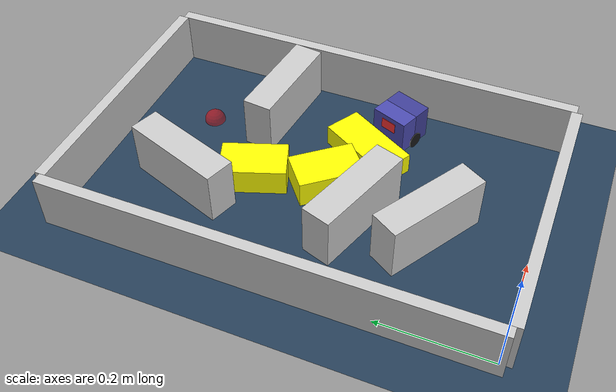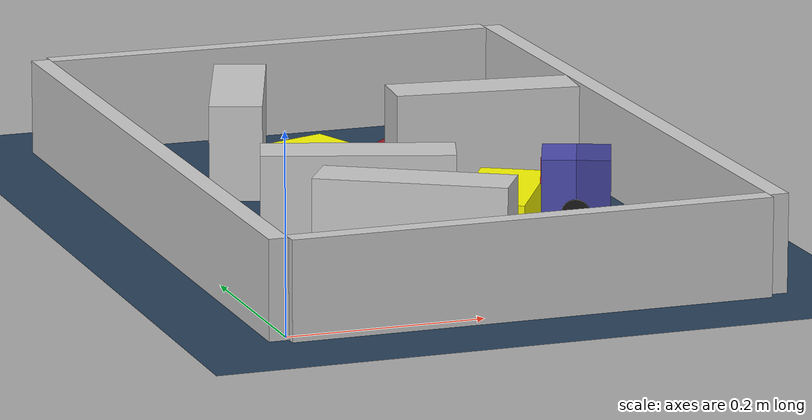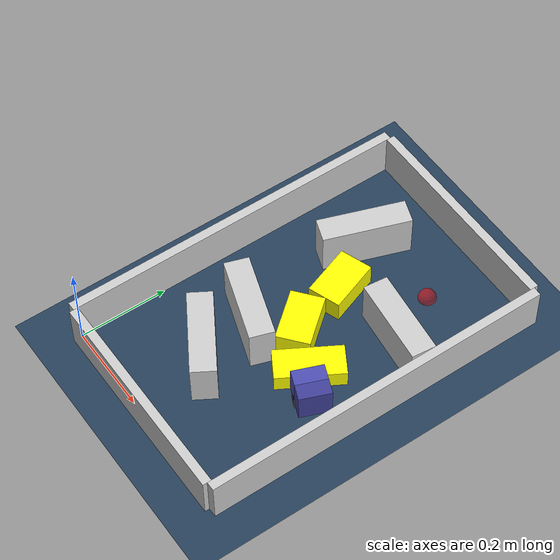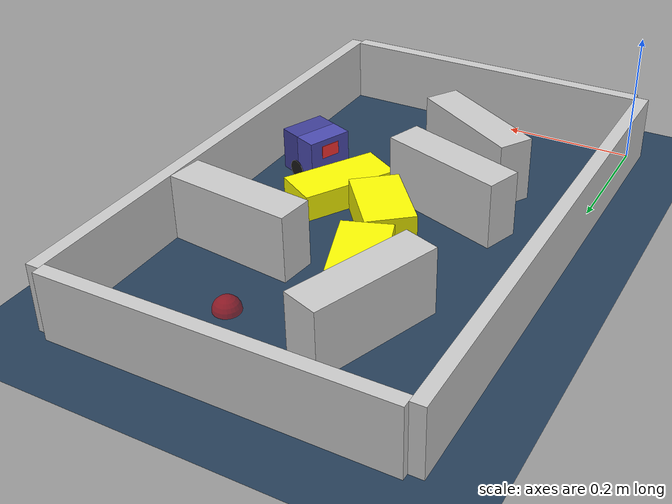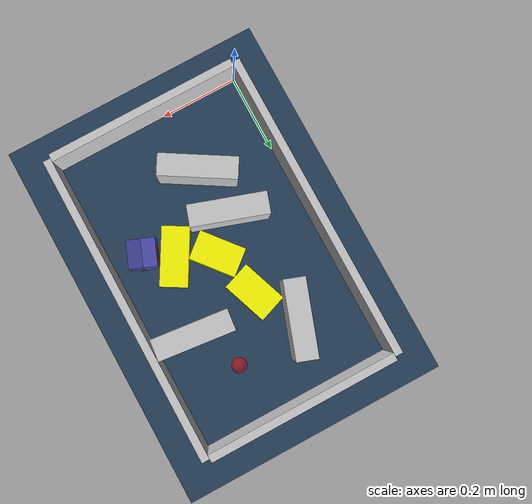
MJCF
<?xml version='1.0' encoding='utf-8'?>
<mujoco model="real_buildable">
  <compiler angle="degree" />
  <option timestep="0.002" integrator="implicitfast" iterations="100" cone="elliptic" />
  <default>
    <geom density="1" />
  </default>
  <asset>
    <texture builtin="gradient" height="3072" rgb1="0.3 0.5 0.7" rgb2="0 0 0" type="skybox" width="512" />
    <texture builtin="checker" height="300" mark="edge" markrgb="0.8 0.8 0.8" name="groundplane" rgb1="0.2 0.3 0.4" rgb2="0.1 0.2 0.3" type="2d" width="300" />
    <material name="groundplane" reflectance="0.2" texrepeat="5 5" texture="groundplane" texuniform="true" />
  </asset>
  <worldbody>
    <light dir="0 0 -1" directional="true" pos="0 0 1.5" />
    <geom name="floor" type="plane" condim="4" friction="0.5 0.005 0.001" material="groundplane" size="0 0 0.05" />
    <body name="walls">
      <geom name="wall_boundary_left" type="box" condim="4" friction="1.0 0.005 0.0001" rgba="0.8 0.8 0.8 1" pos="-0.010000 0.387500 0.050000" euler="0 0 0.000000" size="0.010000 0.397500 0.050000" />
      <geom name="wall_boundary_right" type="box" condim="4" friction="1.0 0.005 0.0001" rgba="0.8 0.8 0.8 1" pos="0.500000 0.387500 0.050000" euler="0 0 0.000000" size="0.010000 0.397500 0.050000" />
      <geom name="wall_boundary_bottom" type="box" condim="4" friction="1.0 0.005 0.0001" rgba="0.8 0.8 0.8 1" pos="0.245000 -0.010000 0.050000" euler="0 0 0.000000" size="0.245000 0.010000 0.050000" />
      <geom name="wall_boundary_top" type="box" condim="4" friction="1.0 0.005 0.0001" rgba="0.8 0.8 0.8 1" pos="0.245000 0.785000 0.050000" euler="0 0 0.000000" size="0.245000 0.010000 0.050000" />
      <geom name="wall_inner_1" type="box" condim="4" friction="1.0 0.005 0.0001" rgba="0.8 0.8 0.8 1" pos="0.191549 0.172272 0.050000" euler="0 0 -31.119121" size="0.097500 0.027500 0.050000" />
      <geom name="wall_inner_2" type="box" condim="4" friction="1.0 0.005 0.0001" rgba="0.8 0.8 0.8 1" pos="0.176347 0.297541 0.050000" euler="0 0 -18.430544" size="0.097500 0.027500 0.050000" />
      <geom name="wall_inner_3" type="box" condim="4" friction="1.0 0.005 0.0001" rgba="0.8 0.8 0.8 1" pos="0.390000 0.518000 0.050000" euler="0 0 173.700000" size="0.097500 0.027500 0.050000" />
      <geom name="wall_inner_4" type="box" condim="4" friction="1.0 0.005 0.0001" rgba="0.8 0.8 0.8 1" pos="0.151000 0.605000 0.050000" euler="0 0 70.500000" size="0.097500 0.027500 0.050000" />
    </body>
    <body name="car" pos="0.40674255167339957 0.28997510329486204 0.01" quat="0.18758073460765057 0 0 0.98224918834481822">
      <freejoint name="car_freejoint" />
      <inertial pos="0 0 0.0375" mass="0.35" diaginertia="0.000266 0.000266 0.000286" />
      <geom name="front_chassis_collision" type="box" pos="0.0175 0 0.0375" size="0.0175 0.035 0.0325" rgba="0.3 0.3 0.7 1" />
      <geom name="rear_chassis_collision" type="box" pos="-0.0175 0 0.0375" size="0.0175 0.035 0.0325" rgba="0.25 0.25 0.6 1" />
      <geom name="front_marker" type="box" pos="0.034 0 0.0505" size="0.002 0.015 0.01" rgba="1 0.2 0.2 1" contype="0" conaffinity="0" />
      <body name="rear_support_body" pos="-0.03 0 0.0025">
        <joint name="rear_caster_joint" type="ball" damping="0.0001" />
        <inertial pos="0 0 0" mass="0.025" diaginertia="0.000001 0.000001 0.000001" />
        <geom name="rear_support" type="sphere" pos="0 0 0" size="0.0025" friction="0 0 0" rgba="0.7 0.1 0.1 1" />
      </body>
      <body name="front_support_body" pos="0.03 0 0.0025">
        <joint name="front_caster_joint" type="ball" damping="0.0001" />
        <inertial pos="0 0 0" mass="0.025" diaginertia="0.000001 0.000001 0.000001" />
        <geom name="front_support" type="sphere" pos="0 0 0" size="0.0025" friction="0 0 0" rgba="0.1 0.7 0.1 1" />
      </body>
      <body name="left_wheel" pos="0 0.0375 0.015">
        <inertial pos="0 0 0" mass="0.05" diaginertia="0.000003 0.000006 0.000003" />
        <joint name="left_wheel_joint" type="hinge" axis="0 1 0" damping="0.01" armature="0.0001" />
        <geom name="left_wheel_collision" type="cylinder" size="0.015 0.0005" euler="90 0 0" rgba="0.1 0.1 0.1 1" />
      </body>
      <body name="right_wheel" pos="0 -0.0375 0.015">
        <inertial pos="0 0 0" mass="0.05" diaginertia="0.000003 0.000006 0.000003" />
        <joint name="right_wheel_joint" type="hinge" axis="0 1 0" damping="0.01" armature="0.0001" />
        <geom name="right_wheel_collision" type="cylinder" size="0.015 0.0005" euler="90 0 0" rgba="0.1 0.1 0.1 1" />
      </body>
    </body>
    <body name="obstacle_0_movable">
      <geom name="obstacle_0_movable" condim="4" pos="0.34248305514944194 0.33012904017451228 0.02" friction="1 0.005 0.0001" rgba="1 1 0 1" size="0.035000 0.075000 0.020000" type="box" mass="0.1" quat="0.26042045768766831 0 0 0.96549530564252117" />
      <joint type="free" />
    </body>
    <body name="obstacle_1_movable">
      <geom name="obstacle_1_movable" condim="4" pos="0.21356171700383994 0.49906923015090165 0.025000000000000001" friction="1 0.005 0.0001" rgba="1 1 0 1" size="0.037500 0.060000 0.025000" type="box" mass="0.1" quat="0.98519521043991531 0 0 0.17143627774263823" />
      <joint type="free" />
    </body>
    <body name="obstacle_2_movable">
      <geom name="obstacle_2_movable" condim="4" pos="0.24777134324726485 0.37439420537960488 0.025000000000000001" friction="1 0.005 0.0001" rgba="1 1 0 1" size="0.037500 0.060000 0.025000" type="box" mass="0.1" quat="0.94083958231372999 0 0 0.33885229872575168" />
      <joint type="free" />
    </body>
    <site name="goal" type="sphere" pos="0.330000 0.640000 0.0" size="0.02" rgba="1 0 0 0.5" />
  </worldbody>
  <actuator>
    <velocity name="left_wheel_drive" joint="left_wheel_joint" ctrlrange="-25 25" kv="0.75" forcerange="-0.5 0.5" />
    <velocity name="right_wheel_drive" joint="right_wheel_joint" ctrlrange="-25 25" kv="0.75" forcerange="-0.5 0.5" />
  </actuator>
</mujoco>
